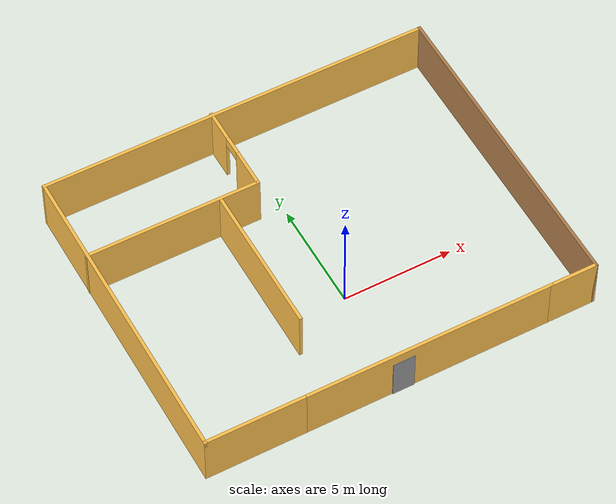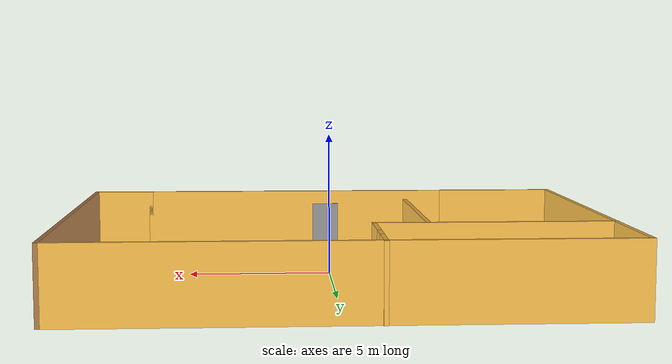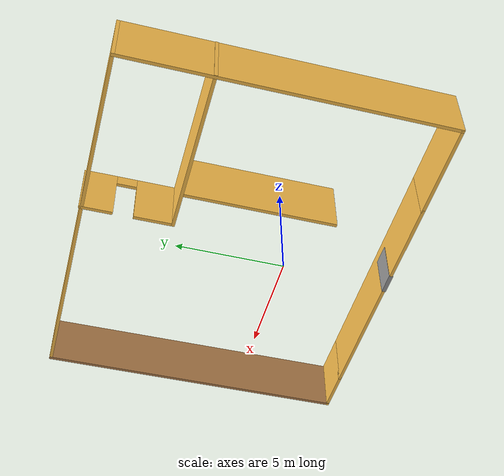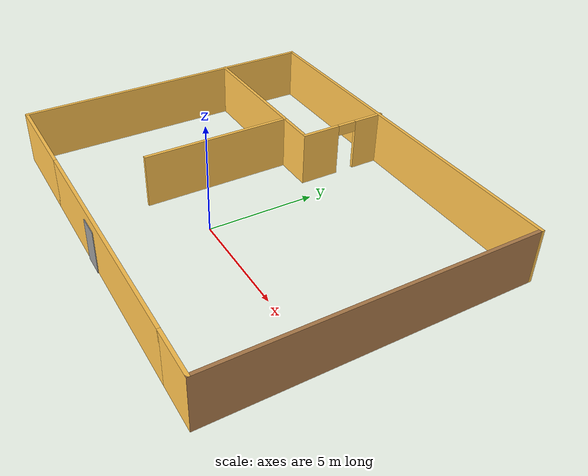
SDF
<?xml version='1.0'?>
<sdf version='1.7'>
  <model name='my_building'>
    <pose>-0.071706 2.24481 0 0 -0 0</pose>
    <link name='Door_0'>
      <collision name='Door_0_Collision'>
        <geometry>
          <box>
            <size>1.00494 0.2 2</size>
          </box>
        </geometry>
        <pose>0 0 1 0 -0 0</pose>
      </collision>
      <visual name='Door_0_Visual'>
        <pose>0 0 1 0 -0 0</pose>
        <geometry>
          <box>
            <size>1.00494 0.2 2</size>
          </box>
        </geometry>
        <material>
          <script>
            <uri>file://media/materials/scripts/gazebo.material</uri>
            <name>Gazebo/Grey</name>
          </script>
        </material>
      </visual>
      <pose>-0.030764 -7.21481 0 0 -0 0</pose>
    </link>
    <link name='Wall_0'>
      <collision name='Wall_0_Collision'>
        <geometry>
          <box>
            <size>11.5 0.15 2.5</size>
          </box>
        </geometry>
        <pose>0 0 1.25 0 -0 0</pose>
      </collision>
      <visual name='Wall_0_Visual'>
        <pose>0 0 1.25 0 -0 0</pose>
        <geometry>
          <box>
            <size>11.5 0.15 2.5</size>
          </box>
        </geometry>
        <material>
          <script>
            <uri>file://media/materials/scripts/gazebo.material</uri>
            <name>Gazebo/Grey</name>
          </script>
          <ambient>1 0.764706 0.305882 1</ambient>
        </material>
        <meta>
          <layer>0</layer>
        </meta>
      </visual>
      <pose>1.15982 -7.20614 0 0 -0 0</pose>
    </link>
    <link name='Wall_1'>
      <collision name='Wall_1_Collision'>
        <geometry>
          <box>
            <size>2.25 0.15 2.5</size>
          </box>
        </geometry>
        <pose>0 0 1.25 0 -0 0</pose>
      </collision>
      <visual name='Wall_1_Visual'>
        <pose>0 0 1.25 0 -0 0</pose>
        <geometry>
          <box>
            <size>2.25 0.15 2.5</size>
          </box>
        </geometry>
        <material>
          <script>
            <uri>file://media/materials/scripts/gazebo.material</uri>
            <name>Gazebo/Grey</name>
          </script>
          <ambient>1 0.764706 0.305882 1</ambient>
        </material>
        <meta>
          <layer>0</layer>
        </meta>
      </visual>
      <pose>7.88482 -7.20614 0 0 -0 0</pose>
    </link>
    <link name='Wall_10'>
      <collision name='Wall_10_Collision'>
        <geometry>
          <box>
            <size>7 0.15 2.5</size>
          </box>
        </geometry>
        <pose>0 0 1.25 0 -0 0</pose>
      </collision>
      <visual name='Wall_10_Visual'>
        <pose>0 0 1.25 0 -0 0</pose>
        <geometry>
          <box>
            <size>7 0.15 2.5</size>
          </box>
        </geometry>
        <material>
          <script>
            <uri>file://media/materials/scripts/gazebo.material</uri>
            <name>Gazebo/Grey</name>
          </script>
          <ambient>1 0.764706 0.305882 1</ambient>
        </material>
        <meta>
          <layer>0</layer>
        </meta>
      </visual>
      <pose>-2.83219 -0.339183 0 0 -0 -1.5708</pose>
    </link>
    <link name='Wall_2'>
      <collision name='Wall_2_Collision'>
        <geometry>
          <box>
            <size>14.5 0.15 2.5</size>
          </box>
        </geometry>
        <pose>0 0 1.25 0 -0 0</pose>
      </collision>
      <visual name='Wall_2_Visual'>
        <pose>0 0 1.25 0 -0 0</pose>
        <geometry>
          <box>
            <size>14.5 0.15 2.5</size>
          </box>
        </geometry>
        <material>
          <script>
            <uri>file://media/materials/scripts/gazebo.material</uri>
            <name>Gazebo/Wood</name>
          </script>
          <ambient>1 1 1 1</ambient>
        </material>
        <meta>
          <layer>0</layer>
        </meta>
      </visual>
      <pose>8.93482 -0.031137 0 0 -0 1.5708</pose>
    </link>
    <link name='Wall_3'>
      <collision name='Wall_3_Collision'>
        <geometry>
          <box>
            <size>18 0.15 2.5</size>
          </box>
        </geometry>
        <pose>0 0 1.25 0 -0 0</pose>
      </collision>
      <visual name='Wall_3_Visual'>
        <pose>0 0 1.25 0 -0 0</pose>
        <geometry>
          <box>
            <size>18 0.15 2.5</size>
          </box>
        </geometry>
        <material>
          <script>
            <uri>file://media/materials/scripts/gazebo.material</uri>
            <name>Gazebo/Grey</name>
          </script>
          <ambient>1 0.764706 0.305882 1</ambient>
        </material>
        <meta>
          <layer>0</layer>
        </meta>
      </visual>
      <pose>0.009824 7.14386 0 0 -0 3.14159</pose>
    </link>
    <link name='Wall_4'>
      <collision name='Wall_4_Collision'>
        <geometry>
          <box>
            <size>14.5 0.15 2.5</size>
          </box>
        </geometry>
        <pose>0 0 1.25 0 -0 0</pose>
      </collision>
      <visual name='Wall_4_Visual'>
        <pose>0 0 1.25 0 -0 0</pose>
        <geometry>
          <box>
            <size>14.5 0.15 2.5</size>
          </box>
        </geometry>
        <material>
          <script>
            <uri>file://media/materials/scripts/gazebo.material</uri>
            <name>Gazebo/Grey</name>
          </script>
          <ambient>1 0.764706 0.305882 1</ambient>
        </material>
        <meta>
          <layer>0</layer>
        </meta>
      </visual>
      <pose>-8.91518 -0.031137 0 0 -0 -1.5708</pose>
    </link>
    <link name='Wall_5'>
      <collision name='Wall_5_Collision'>
        <geometry>
          <box>
            <size>4.55 0.15 2.5</size>
          </box>
        </geometry>
        <pose>0 0 1.25 0 -0 0</pose>
      </collision>
      <visual name='Wall_5_Visual'>
        <pose>0 0 1.25 0 -0 0</pose>
        <geometry>
          <box>
            <size>4.55 0.15 2.5</size>
          </box>
        </geometry>
        <material>
          <script>
            <uri>file://media/materials/scripts/gazebo.material</uri>
            <name>Gazebo/Grey</name>
          </script>
          <ambient>1 0.764706 0.305882 1</ambient>
        </material>
        <meta>
          <layer>0</layer>
        </meta>
      </visual>
      <pose>-6.71518 -7.20614 0 0 -0 0</pose>
    </link>
    <link name='Wall_7'>
      <collision name='Wall_7_Collision'>
        <geometry>
          <box>
            <size>8 0.15 2.5</size>
          </box>
        </geometry>
        <pose>0 0 1.25 0 -0 0</pose>
      </collision>
      <visual name='Wall_7_Visual'>
        <pose>0 0 1.25 0 -0 0</pose>
        <geometry>
          <box>
            <size>8 0.15 2.5</size>
          </box>
        </geometry>
        <material>
          <script>
            <uri>file://media/materials/scripts/gazebo.material</uri>
            <name>Gazebo/Grey</name>
          </script>
          <ambient>1 0.764706 0.305882 1</ambient>
        </material>
        <meta>
          <layer>0</layer>
        </meta>
      </visual>
      <pose>-5.00983 3.10614 0 0 -0 0</pose>
    </link>
    <link name='Wall_8'>
      <pose>-1.08482 5.15614 0 0 -0 1.5708</pose>
      <visual name='Wall_8_Visual_0'>
        <pose>-1.19826 0 1.25 0 -0 0</pose>
        <geometry>
          <box>
            <size>1.85347 0.15 2.5</size>
          </box>
        </geometry>
        <material>
          <script>
            <uri>file://media/materials/scripts/gazebo.material</uri>
            <name>Gazebo/Grey</name>
          </script>
          <ambient>1 0.764706 0.305882 1</ambient>
        </material>
        <meta>
          <layer>0</layer>
        </meta>
      </visual>
      <collision name='Wall_8_Collision_0'>
        <geometry>
          <box>
            <size>1.85347 0.15 2.5</size>
          </box>
        </geometry>
        <pose>-1.19826 0 1.25 0 -0 0</pose>
      </collision>
      <visual name='Wall_8_Visual_1'>
        <pose>1.37674 0 1.25 0 -0 0</pose>
        <geometry>
          <box>
            <size>1.49653 0.15 2.5</size>
          </box>
        </geometry>
        <material>
          <script>
            <uri>file://media/materials/scripts/gazebo.material</uri>
            <name>Gazebo/Grey</name>
          </script>
          <ambient>1 0.764706 0.305882 1</ambient>
        </material>
        <meta>
          <layer>0</layer>
        </meta>
      </visual>
      <collision name='Wall_8_Collision_1'>
        <geometry>
          <box>
            <size>1.49653 0.15 2.5</size>
          </box>
        </geometry>
        <pose>1.37674 0 1.25 0 -0 0</pose>
      </collision>
      <visual name='Wall_8_Visual_2'>
        <pose>0.178471 0 2.25 0 -0 0</pose>
        <geometry>
          <box>
            <size>0.9 0.15 0.5</size>
          </box>
        </geometry>
        <material>
          <script>
            <uri>file://media/materials/scripts/gazebo.material</uri>
            <name>Gazebo/Grey</name>
          </script>
          <ambient>1 0.764706 0.305882 1</ambient>
        </material>
        <meta>
          <layer>0</layer>
        </meta>
      </visual>
      <collision name='Wall_8_Collision_2'>
        <geometry>
          <box>
            <size>0.9 0.15 0.5</size>
          </box>
        </geometry>
        <pose>0.178471 0 2.25 0 -0 0</pose>
      </collision>
    </link>
    <static>1</static>
  </model>
</sdf>
